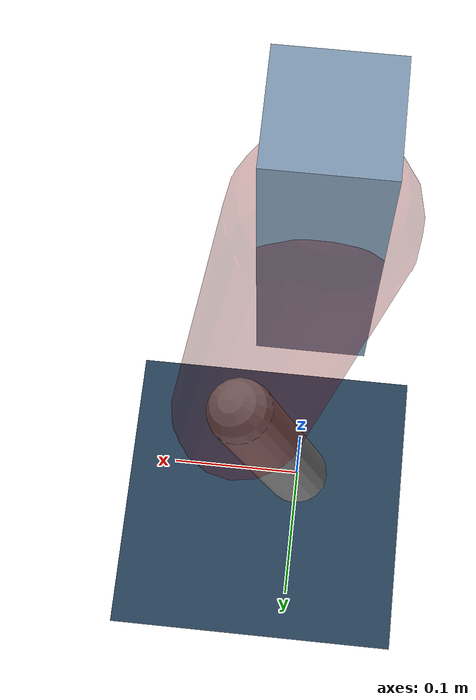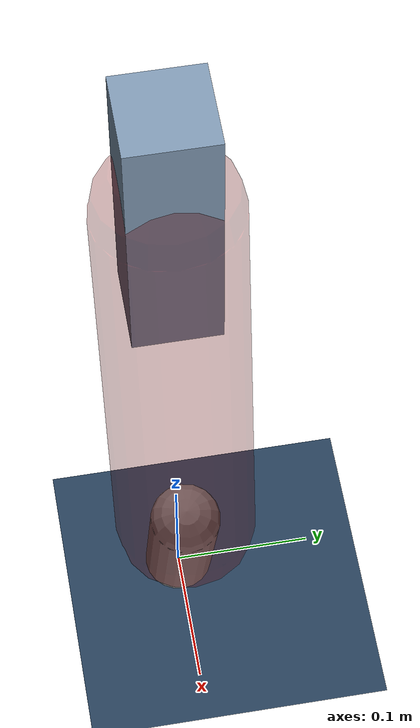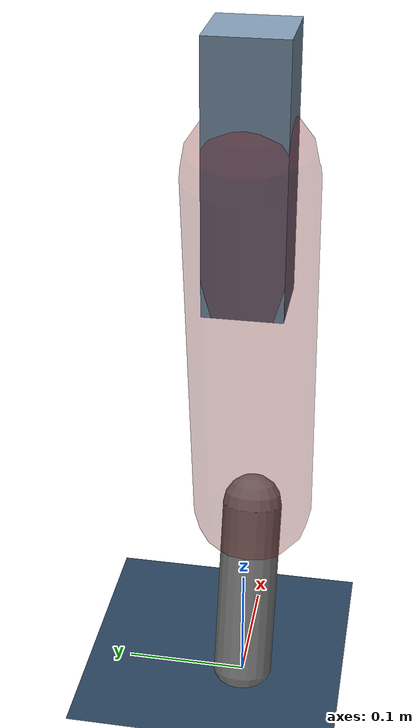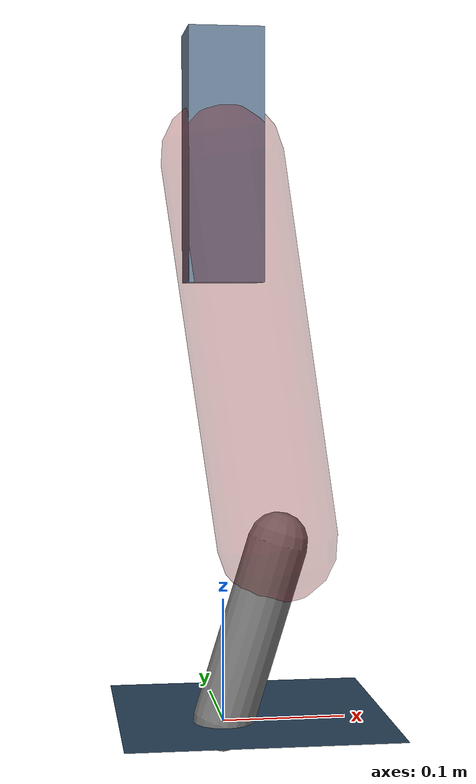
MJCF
<mujoco model="Hopper2D">
	<compiler inertiafromgeom="true" angle="radian" />
	<option timestep="0.001" integrator="implicit" cone="elliptic" solver="Newton" tolerance="1e-10" />

	<default>
		<geom contype="1" conaffinity="1" condim="3" friction="2 0.005 0.0001" solref="0.005 1" />
		<joint limited="true" damping="0.1" />
	</default>

	<asset>
		<texture name="skybox" type="skybox" builtin="gradient" rgb1=".4 .6 .8" rgb2="0 0 0" width="800" height="800" />
		<texture name="grid" type="2d" builtin="checker" rgb1=".1 .2 .3" rgb2=".2 .3 .4" width="300" height="300" mark="edge" markrgb=".2 .3 .4" />
		<material name="ground" texture="grid" texrepeat="1 1" texuniform="true" reflectance="0.1" />
		<material name="leg" rgba="0.5 0.6 0.7 1" />
	</asset>

	<worldbody>

		<geom name="floor" type="plane" size="5 5 0.25" material="ground" />

		<light directional="false" diffuse="0.8 0.8 0.8" specular="0.3 0.3 0.3" pos="0 0 2" dir="0 0 -1" />
		<light mode="targetbodycom" target="base" directional="false" diffuse="0.8 0.8 0.8" specular="0.3 0.3 0.3" pos="0 0 2" dir="0 0 -1" />

		<camera name="fixed" pos="0 -2 1" xyaxes="1 0 0 0 0 1" />
		<camera name="tracking" mode="trackcom" pos="0 -3 1" />

		<body name="root" pos="0 0 0.45666073799364637">
			<joint name="slide_x" type="slide" axis="1 0 0" range="-100 100" />
			<joint name="slide_z" type="slide" axis="0 0 1" range="0 10" />

			<body name="base" pos="0 0 0">
				<geom name="torso" type="box" size="0.03 0.03 0.1" mass="1.9709999999999999" material="leg" />

				<body name="link1" pos="0 0 0" euler="0 1.427404324004174 0">
					<joint type="hinge" axis="0 -1 0" pos="0 0 0" name="hinge1" limited="true" range="-3.14 3.14" stiffness="0" damping="0.1" />
					<geom name="thigh" type="capsule" fromto="0 0 0 0.31433883628527287 0 0" size="0.05" rgba="0.5 0 0 0.3" mass="1.0277148579702367" />

					<body name="link2" pos="0.31433883628527287 0 0" euler="0 0.442740414316308 0">
						<joint type="hinge" axis="0 -1 0" pos="0 0 0" name="hinge2" limited="true" range="-3.14 3.14" stiffness="0" damping="0.1" />
						<geom name="shank" type="capsule" fromto="0 0 0 0.15232190170837348 0 0" size="0.025" mass="0.35978971153753614" />

					</body>
				</body>
			</body>
		</body>
	</worldbody>

	<actuator>
		<motor name="torque1" joint="hinge1" ctrlrange="-15.106477054378342 15.106477054378342" ctrllimited="true" gear="1" />
		<motor name="torque2" joint="hinge2" ctrlrange="-108.3644522236571 108.3644522236571" ctrllimited="true" gear="1" />
	</actuator>
</mujoco>
